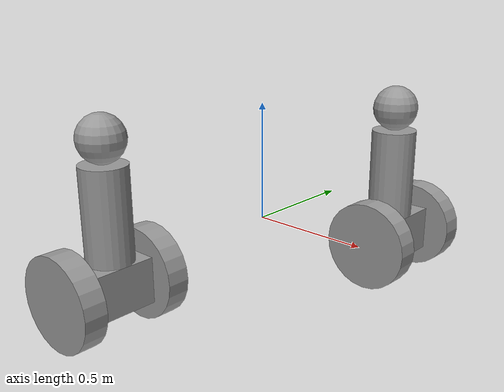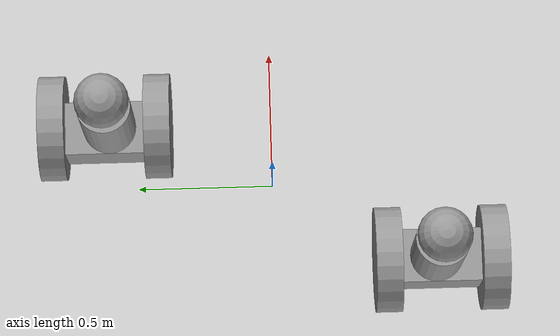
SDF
<?xml version='1.0'?>
<sdf version='1.6'>
  <model name='myrobot'>
    <link name='link_0'>
      <pose frame=''>0.25729 0.630985 -0.18 0 -0 0</pose>
      <inertial>
        <mass>1</mass>
        <inertia>
          <ixx>0.166667</ixx>
          <ixy>0</ixy>
          <ixz>0</ixz>
          <iyy>0.166667</iyy>
          <iyz>0</iyz>
          <izz>0.166667</izz>
        </inertia>
        <pose frame=''>0 0 0 0 -0 0</pose>
      </inertial>
      <gravity>1</gravity>
      <self_collide>0</self_collide>
      <kinematic>0</kinematic>
      <visual name='visual'>
        <pose frame=''>0 0 0 0 -0 0</pose>
        <geometry>
          <box>
            <size>0.2 0.3 0.2</size>
          </box>
        </geometry>
        <material>
          <lighting>1</lighting>
          <script>
            <uri>file://media/materials/scripts/gazebo.material</uri>
            <name>Gazebo/Grey</name>
          </script>
          <shader type='pixel'>
            <normal_map>__default__</normal_map>
          </shader>
          <ambient>0.3 0.3 0.3 1</ambient>
          <diffuse>0.7 0.7 0.7 1</diffuse>
          <specular>0.01 0.01 0.01 1</specular>
          <emissive>0 0 0 1</emissive>
        </material>
        <transparency>0</transparency>
        <cast_shadows>1</cast_shadows>
      </visual>
      <collision name='collision'>
        <laser_retro>0</laser_retro>
        <max_contacts>10</max_contacts>
        <pose frame=''>0 0 0 0 -0 0</pose>
        <geometry>
          <box>
            <size>0.2 0.3 0.2</size>
          </box>
        </geometry>
        <surface>
          <friction>
            <ode>
              <mu>1</mu>
              <mu2>1</mu2>
              <fdir1>0 0 0</fdir1>
              <slip1>0</slip1>
              <slip2>0</slip2>
            </ode>
            <torsional>
              <coefficient>1</coefficient>
              <patch_radius>0</patch_radius>
              <surface_radius>0</surface_radius>
              <use_patch_radius>1</use_patch_radius>
              <ode>
                <slip>0</slip>
              </ode>
            </torsional>
          </friction>
          <bounce>
            <restitution_coefficient>0</restitution_coefficient>
            <threshold>1e+06</threshold>
          </bounce>
          <contact>
            <collide_without_contact>0</collide_without_contact>
            <collide_without_contact_bitmask>1</collide_without_contact_bitmask>
            <collide_bitmask>1</collide_bitmask>
            <ode>
              <soft_cfm>0</soft_cfm>
              <soft_erp>0.2</soft_erp>
              <kp>1e+13</kp>
              <kd>1</kd>
              <max_vel>0.01</max_vel>
              <min_depth>0</min_depth>
            </ode>
            <bullet>
              <split_impulse>1</split_impulse>
              <split_impulse_penetration_threshold>-0.01</split_impulse_penetration_threshold>
              <soft_cfm>0</soft_cfm>
              <soft_erp>0.2</soft_erp>
              <kp>1e+13</kp>
              <kd>1</kd>
            </bullet>
          </contact>
        </surface>
      </collision>
    </link>
    <link name='link_0_clone'>
      <pose frame=''>-0.265295 -0.631003 -0.18 0 -0 0</pose>
      <inertial>
        <mass>1</mass>
        <inertia>
          <ixx>0.166667</ixx>
          <ixy>0</ixy>
          <ixz>0</ixz>
          <iyy>0.166667</iyy>
          <iyz>0</iyz>
          <izz>0.166667</izz>
        </inertia>
        <pose frame=''>0 0 0 0 -0 0</pose>
      </inertial>
      <self_collide>0</self_collide>
      <kinematic>0</kinematic>
      <visual name='visual'>
        <pose frame=''>0 0 0 0 -0 0</pose>
        <geometry>
          <box>
            <size>0.2 0.3 0.2</size>
          </box>
        </geometry>
        <material>
          <lighting>1</lighting>
          <script>
            <uri>file://media/materials/scripts/gazebo.material</uri>
            <name>Gazebo/Grey</name>
          </script>
          <shader type='pixel'>
            <normal_map>__default__</normal_map>
          </shader>
          <ambient>0.3 0.3 0.3 1</ambient>
          <diffuse>0.7 0.7 0.7 1</diffuse>
          <specular>0.01 0.01 0.01 1</specular>
          <emissive>0 0 0 1</emissive>
        </material>
        <transparency>0</transparency>
        <cast_shadows>1</cast_shadows>
      </visual>
      <collision name='collision'>
        <laser_retro>0</laser_retro>
        <max_contacts>10</max_contacts>
        <pose frame=''>0 0 0 0 -0 0</pose>
        <geometry>
          <box>
            <size>0.2 0.3 0.2</size>
          </box>
        </geometry>
        <surface>
          <friction>
            <ode>
              <mu>1</mu>
              <mu2>1</mu2>
              <fdir1>0 0 0</fdir1>
              <slip1>0</slip1>
              <slip2>0</slip2>
            </ode>
            <torsional>
              <coefficient>1</coefficient>
              <patch_radius>0</patch_radius>
              <surface_radius>0</surface_radius>
              <use_patch_radius>1</use_patch_radius>
              <ode>
                <slip>0</slip>
              </ode>
            </torsional>
          </friction>
          <bounce>
            <restitution_coefficient>0</restitution_coefficient>
            <threshold>1e+06</threshold>
          </bounce>
          <contact>
            <collide_without_contact>0</collide_without_contact>
            <collide_without_contact_bitmask>1</collide_without_contact_bitmask>
            <collide_bitmask>1</collide_bitmask>
            <ode>
              <soft_cfm>0</soft_cfm>
              <soft_erp>0.2</soft_erp>
              <kp>1e+13</kp>
              <kd>1</kd>
              <max_vel>0.01</max_vel>
              <min_depth>0</min_depth>
            </ode>
            <bullet>
              <split_impulse>1</split_impulse>
              <split_impulse_penetration_threshold>-0.01</split_impulse_penetration_threshold>
              <soft_cfm>0</soft_cfm>
              <soft_erp>0.2</soft_erp>
              <kp>1e+13</kp>
              <kd>1</kd>
            </bullet>
          </contact>
        </surface>
      </collision>
    </link>
    <link name='link_1'>
      <pose frame=''>0.27729 0.430966 -0.18 1.5707 -0 0</pose>
      <inertial>
        <mass>1</mass>
        <inertia>
          <ixx>0.145833</ixx>
          <ixy>0</ixy>
          <ixz>0</ixz>
          <iyy>0.145833</iyy>
          <iyz>0</iyz>
          <izz>0.125</izz>
        </inertia>
        <pose frame=''>0 0 0 0 -0 0</pose>
      </inertial>
      <gravity>1</gravity>
      <self_collide>0</self_collide>
      <kinematic>0</kinematic>
      <visual name='visual'>
        <pose frame=''>0 0 0 0 -0 0</pose>
        <geometry>
          <cylinder>
            <radius>0.2</radius>
            <length>0.1</length>
          </cylinder>
        </geometry>
        <material>
          <lighting>1</lighting>
          <script>
            <uri>file://media/materials/scripts/gazebo.material</uri>
            <name>Gazebo/Grey</name>
          </script>
          <shader type='pixel'>
            <normal_map>__default__</normal_map>
          </shader>
          <ambient>0.3 0.3 0.3 1</ambient>
          <diffuse>0.7 0.7 0.7 1</diffuse>
          <specular>0.01 0.01 0.01 1</specular>
          <emissive>0 0 0 1</emissive>
        </material>
        <transparency>0</transparency>
        <cast_shadows>1</cast_shadows>
      </visual>
      <collision name='collision'>
        <laser_retro>0</laser_retro>
        <max_contacts>10</max_contacts>
        <pose frame=''>0 0 0 0 -0 0</pose>
        <geometry>
          <cylinder>
            <radius>0.2</radius>
            <length>0.1</length>
          </cylinder>
        </geometry>
        <surface>
          <friction>
            <ode>
              <mu>1</mu>
              <mu2>1</mu2>
              <fdir1>0 0 0</fdir1>
              <slip1>0</slip1>
              <slip2>0</slip2>
            </ode>
            <torsional>
              <coefficient>1</coefficient>
              <patch_radius>0</patch_radius>
              <surface_radius>0</surface_radius>
              <use_patch_radius>1</use_patch_radius>
              <ode>
                <slip>0</slip>
              </ode>
            </torsional>
          </friction>
          <bounce>
            <restitution_coefficient>0</restitution_coefficient>
            <threshold>1e+06</threshold>
          </bounce>
          <contact>
            <collide_without_contact>0</collide_without_contact>
            <collide_without_contact_bitmask>1</collide_without_contact_bitmask>
            <collide_bitmask>1</collide_bitmask>
            <ode>
              <soft_cfm>0</soft_cfm>
              <soft_erp>0.2</soft_erp>
              <kp>1e+13</kp>
              <kd>1</kd>
              <max_vel>0.01</max_vel>
              <min_depth>0</min_depth>
            </ode>
            <bullet>
              <split_impulse>1</split_impulse>
              <split_impulse_penetration_threshold>-0.01</split_impulse_penetration_threshold>
              <soft_cfm>0</soft_cfm>
              <soft_erp>0.2</soft_erp>
              <kp>1e+13</kp>
              <kd>1</kd>
            </bullet>
          </contact>
        </surface>
      </collision>
    </link>
    <link name='link_1_clone'>
      <pose frame=''>0.27729 0.831004 -0.18 1.5707 -0 0</pose>
      <inertial>
        <mass>1</mass>
        <inertia>
          <ixx>0.145833</ixx>
          <ixy>0</ixy>
          <ixz>0</ixz>
          <iyy>0.145833</iyy>
          <iyz>0</iyz>
          <izz>0.125</izz>
        </inertia>
        <pose frame=''>0 0 0 0 -0 0</pose>
      </inertial>
      <self_collide>0</self_collide>
      <kinematic>0</kinematic>
      <visual name='visual'>
        <pose frame=''>0 0 0 0 -0 0</pose>
        <geometry>
          <cylinder>
            <radius>0.2</radius>
            <length>0.1</length>
          </cylinder>
        </geometry>
        <material>
          <lighting>1</lighting>
          <script>
            <uri>file://media/materials/scripts/gazebo.material</uri>
            <name>Gazebo/Grey</name>
          </script>
          <shader type='pixel'>
            <normal_map>__default__</normal_map>
          </shader>
          <ambient>0.3 0.3 0.3 1</ambient>
          <diffuse>0.7 0.7 0.7 1</diffuse>
          <specular>0.01 0.01 0.01 1</specular>
          <emissive>0 0 0 1</emissive>
        </material>
        <transparency>0</transparency>
        <cast_shadows>1</cast_shadows>
      </visual>
      <collision name='collision'>
        <laser_retro>0</laser_retro>
        <max_contacts>10</max_contacts>
        <pose frame=''>0 0 0 0 -0 0</pose>
        <geometry>
          <cylinder>
            <radius>0.2</radius>
            <length>0.1</length>
          </cylinder>
        </geometry>
        <surface>
          <friction>
            <ode>
              <mu>1</mu>
              <mu2>1</mu2>
              <fdir1>0 0 0</fdir1>
              <slip1>0</slip1>
              <slip2>0</slip2>
            </ode>
            <torsional>
              <coefficient>1</coefficient>
              <patch_radius>0</patch_radius>
              <surface_radius>0</surface_radius>
              <use_patch_radius>1</use_patch_radius>
              <ode>
                <slip>0</slip>
              </ode>
            </torsional>
          </friction>
          <bounce>
            <restitution_coefficient>0</restitution_coefficient>
            <threshold>1e+06</threshold>
          </bounce>
          <contact>
            <collide_without_contact>0</collide_without_contact>
            <collide_without_contact_bitmask>1</collide_without_contact_bitmask>
            <collide_bitmask>1</collide_bitmask>
            <ode>
              <soft_cfm>0</soft_cfm>
              <soft_erp>0.2</soft_erp>
              <kp>1e+13</kp>
              <kd>1</kd>
              <max_vel>0.01</max_vel>
              <min_depth>0</min_depth>
            </ode>
            <bullet>
              <split_impulse>1</split_impulse>
              <split_impulse_penetration_threshold>-0.01</split_impulse_penetration_threshold>
              <soft_cfm>0</soft_cfm>
              <soft_erp>0.2</soft_erp>
              <kp>1e+13</kp>
              <kd>1</kd>
            </bullet>
          </contact>
        </surface>
      </collision>
    </link>
    <link name='link_1_clone_0'>
      <pose frame=''>-0.265295 -0.831022 -0.18 1.5707 -0 0</pose>
      <inertial>
        <mass>1</mass>
        <inertia>
          <ixx>0.145833</ixx>
          <ixy>0</ixy>
          <ixz>0</ixz>
          <iyy>0.145833</iyy>
          <iyz>0</iyz>
          <izz>0.125</izz>
        </inertia>
        <pose frame=''>0 0 0 0 -0 0</pose>
      </inertial>
      <self_collide>0</self_collide>
      <kinematic>0</kinematic>
      <visual name='visual'>
        <pose frame=''>0 0 0 0 -0 0</pose>
        <geometry>
          <cylinder>
            <radius>0.2</radius>
            <length>0.1</length>
          </cylinder>
        </geometry>
        <material>
          <lighting>1</lighting>
          <script>
            <uri>file://media/materials/scripts/gazebo.material</uri>
            <name>Gazebo/Grey</name>
          </script>
          <shader type='pixel'>
            <normal_map>__default__</normal_map>
          </shader>
          <ambient>0.3 0.3 0.3 1</ambient>
          <diffuse>0.7 0.7 0.7 1</diffuse>
          <specular>0.01 0.01 0.01 1</specular>
          <emissive>0 0 0 1</emissive>
        </material>
        <transparency>0</transparency>
        <cast_shadows>1</cast_shadows>
      </visual>
      <collision name='collision'>
        <laser_retro>0</laser_retro>
        <max_contacts>10</max_contacts>
        <pose frame=''>0 0 0 0 -0 0</pose>
        <geometry>
          <cylinder>
            <radius>0.2</radius>
            <length>0.1</length>
          </cylinder>
        </geometry>
        <surface>
          <friction>
            <ode>
              <mu>1</mu>
              <mu2>1</mu2>
              <fdir1>0 0 0</fdir1>
              <slip1>0</slip1>
              <slip2>0</slip2>
            </ode>
            <torsional>
              <coefficient>1</coefficient>
              <patch_radius>0</patch_radius>
              <surface_radius>0</surface_radius>
              <use_patch_radius>1</use_patch_radius>
              <ode>
                <slip>0</slip>
              </ode>
            </torsional>
          </friction>
          <bounce>
            <restitution_coefficient>0</restitution_coefficient>
            <threshold>1e+06</threshold>
          </bounce>
          <contact>
            <collide_without_contact>0</collide_without_contact>
            <collide_without_contact_bitmask>1</collide_without_contact_bitmask>
            <collide_bitmask>1</collide_bitmask>
            <ode>
              <soft_cfm>0</soft_cfm>
              <soft_erp>0.2</soft_erp>
              <kp>1e+13</kp>
              <kd>1</kd>
              <max_vel>0.01</max_vel>
              <min_depth>0</min_depth>
            </ode>
            <bullet>
              <split_impulse>1</split_impulse>
              <split_impulse_penetration_threshold>-0.01</split_impulse_penetration_threshold>
              <soft_cfm>0</soft_cfm>
              <soft_erp>0.2</soft_erp>
              <kp>1e+13</kp>
              <kd>1</kd>
            </bullet>
          </contact>
        </surface>
      </collision>
    </link>
    <link name='link_1_clone_clone'>
      <pose frame=''>-0.265295 -0.430983 -0.18 1.5707 -0 0</pose>
      <inertial>
        <mass>1</mass>
        <inertia>
          <ixx>0.145833</ixx>
          <ixy>0</ixy>
          <ixz>0</ixz>
          <iyy>0.145833</iyy>
          <iyz>0</iyz>
          <izz>0.125</izz>
        </inertia>
        <pose frame=''>0 0 0 0 -0 0</pose>
      </inertial>
      <self_collide>0</self_collide>
      <kinematic>0</kinematic>
      <visual name='visual'>
        <pose frame=''>0 0 0 0 -0 0</pose>
        <geometry>
          <cylinder>
            <radius>0.2</radius>
            <length>0.1</length>
          </cylinder>
        </geometry>
        <material>
          <lighting>1</lighting>
          <script>
            <uri>file://media/materials/scripts/gazebo.material</uri>
            <name>Gazebo/Grey</name>
          </script>
          <shader type='pixel'>
            <normal_map>__default__</normal_map>
          </shader>
          <ambient>0.3 0.3 0.3 1</ambient>
          <diffuse>0.7 0.7 0.7 1</diffuse>
          <specular>0.01 0.01 0.01 1</specular>
          <emissive>0 0 0 1</emissive>
        </material>
        <transparency>0</transparency>
        <cast_shadows>1</cast_shadows>
      </visual>
      <collision name='collision'>
        <laser_retro>0</laser_retro>
        <max_contacts>10</max_contacts>
        <pose frame=''>0 0 0 0 -0 0</pose>
        <geometry>
          <cylinder>
            <radius>0.2</radius>
            <length>0.1</length>
          </cylinder>
        </geometry>
        <surface>
          <friction>
            <ode>
              <mu>1</mu>
              <mu2>1</mu2>
              <fdir1>0 0 0</fdir1>
              <slip1>0</slip1>
              <slip2>0</slip2>
            </ode>
            <torsional>
              <coefficient>1</coefficient>
              <patch_radius>0</patch_radius>
              <surface_radius>0</surface_radius>
              <use_patch_radius>1</use_patch_radius>
              <ode>
                <slip>0</slip>
              </ode>
            </torsional>
          </friction>
          <bounce>
            <restitution_coefficient>0</restitution_coefficient>
            <threshold>1e+06</threshold>
          </bounce>
          <contact>
            <collide_without_contact>0</collide_without_contact>
            <collide_without_contact_bitmask>1</collide_without_contact_bitmask>
            <collide_bitmask>1</collide_bitmask>
            <ode>
              <soft_cfm>0</soft_cfm>
              <soft_erp>0.2</soft_erp>
              <kp>1e+13</kp>
              <kd>1</kd>
              <max_vel>0.01</max_vel>
              <min_depth>0</min_depth>
            </ode>
            <bullet>
              <split_impulse>1</split_impulse>
              <split_impulse_penetration_threshold>-0.01</split_impulse_penetration_threshold>
              <soft_cfm>0</soft_cfm>
              <soft_erp>0.2</soft_erp>
              <kp>1e+13</kp>
              <kd>1</kd>
            </bullet>
          </contact>
        </surface>
      </collision>
    </link>
    <link name='link_2'>
      <pose frame=''>0.25729 0.610985 0.12 0 -0 0</pose>
      <inertial>
        <mass>1</mass>
        <inertia>
          <ixx>0.145833</ixx>
          <ixy>0</ixy>
          <ixz>0</ixz>
          <iyy>0.145833</iyy>
          <iyz>0</iyz>
          <izz>0.125</izz>
        </inertia>
        <pose frame=''>0 0 0 0 -0 0</pose>
      </inertial>
      <gravity>1</gravity>
      <self_collide>0</self_collide>
      <kinematic>0</kinematic>
      <visual name='visual'>
        <pose frame=''>0 0 0 0 -0 0</pose>
        <geometry>
          <cylinder>
            <radius>0.1</radius>
            <length>0.4</length>
          </cylinder>
        </geometry>
        <material>
          <lighting>1</lighting>
          <script>
            <uri>file://media/materials/scripts/gazebo.material</uri>
            <name>Gazebo/Grey</name>
          </script>
          <shader type='pixel'>
            <normal_map>__default__</normal_map>
          </shader>
          <ambient>0.3 0.3 0.3 1</ambient>
          <diffuse>0.7 0.7 0.7 1</diffuse>
          <specular>0.01 0.01 0.01 1</specular>
          <emissive>0 0 0 1</emissive>
        </material>
        <transparency>0</transparency>
        <cast_shadows>1</cast_shadows>
      </visual>
      <collision name='collision'>
        <laser_retro>0</laser_retro>
        <max_contacts>10</max_contacts>
        <pose frame=''>0 0 0 0 -0 0</pose>
        <geometry>
          <cylinder>
            <radius>0.1</radius>
            <length>0.4</length>
          </cylinder>
        </geometry>
        <surface>
          <friction>
            <ode>
              <mu>1</mu>
              <mu2>1</mu2>
              <fdir1>0 0 0</fdir1>
              <slip1>0</slip1>
              <slip2>0</slip2>
            </ode>
            <torsional>
              <coefficient>1</coefficient>
              <patch_radius>0</patch_radius>
              <surface_radius>0</surface_radius>
              <use_patch_radius>1</use_patch_radius>
              <ode>
                <slip>0</slip>
              </ode>
            </torsional>
          </friction>
          <bounce>
            <restitution_coefficient>0</restitution_coefficient>
            <threshold>1e+06</threshold>
          </bounce>
          <contact>
            <collide_without_contact>0</collide_without_contact>
            <collide_without_contact_bitmask>1</collide_without_contact_bitmask>
            <collide_bitmask>1</collide_bitmask>
            <ode>
              <soft_cfm>0</soft_cfm>
              <soft_erp>0.2</soft_erp>
              <kp>1e+13</kp>
              <kd>1</kd>
              <max_vel>0.01</max_vel>
              <min_depth>0</min_depth>
            </ode>
            <bullet>
              <split_impulse>1</split_impulse>
              <split_impulse_penetration_threshold>-0.01</split_impulse_penetration_threshold>
              <soft_cfm>0</soft_cfm>
              <soft_erp>0.2</soft_erp>
              <kp>1e+13</kp>
              <kd>1</kd>
            </bullet>
          </contact>
        </surface>
      </collision>
    </link>
    <link name='link_2_clone'>
      <pose frame=''>-0.265295 -0.610957 0.12 0 -0 0</pose>
      <inertial>
        <mass>1</mass>
        <inertia>
          <ixx>0.145833</ixx>
          <ixy>0</ixy>
          <ixz>0</ixz>
          <iyy>0.145833</iyy>
          <iyz>0</iyz>
          <izz>0.125</izz>
        </inertia>
        <pose frame=''>0 0 0 0 -0 0</pose>
      </inertial>
      <self_collide>0</self_collide>
      <kinematic>0</kinematic>
      <visual name='visual'>
        <pose frame=''>0 0 0 0 -0 0</pose>
        <geometry>
          <cylinder>
            <radius>0.1</radius>
            <length>0.4</length>
          </cylinder>
        </geometry>
        <material>
          <lighting>1</lighting>
          <script>
            <uri>file://media/materials/scripts/gazebo.material</uri>
            <name>Gazebo/Grey</name>
          </script>
          <shader type='pixel'>
            <normal_map>__default__</normal_map>
          </shader>
          <ambient>0.3 0.3 0.3 1</ambient>
          <diffuse>0.7 0.7 0.7 1</diffuse>
          <specular>0.01 0.01 0.01 1</specular>
          <emissive>0 0 0 1</emissive>
        </material>
        <transparency>0</transparency>
        <cast_shadows>1</cast_shadows>
      </visual>
      <collision name='collision'>
        <laser_retro>0</laser_retro>
        <max_contacts>10</max_contacts>
        <pose frame=''>0 0 0 0 -0 0</pose>
        <geometry>
          <cylinder>
            <radius>0.1</radius>
            <length>0.4</length>
          </cylinder>
        </geometry>
        <surface>
          <friction>
            <ode>
              <mu>1</mu>
              <mu2>1</mu2>
              <fdir1>0 0 0</fdir1>
              <slip1>0</slip1>
              <slip2>0</slip2>
            </ode>
            <torsional>
              <coefficient>1</coefficient>
              <patch_radius>0</patch_radius>
              <surface_radius>0</surface_radius>
              <use_patch_radius>1</use_patch_radius>
              <ode>
                <slip>0</slip>
              </ode>
            </torsional>
          </friction>
          <bounce>
            <restitution_coefficient>0</restitution_coefficient>
            <threshold>1e+06</threshold>
          </bounce>
          <contact>
            <collide_without_contact>0</collide_without_contact>
            <collide_without_contact_bitmask>1</collide_without_contact_bitmask>
            <collide_bitmask>1</collide_bitmask>
            <ode>
              <soft_cfm>0</soft_cfm>
              <soft_erp>0.2</soft_erp>
              <kp>1e+13</kp>
              <kd>1</kd>
              <max_vel>0.01</max_vel>
              <min_depth>0</min_depth>
            </ode>
            <bullet>
              <split_impulse>1</split_impulse>
              <split_impulse_penetration_threshold>-0.01</split_impulse_penetration_threshold>
              <soft_cfm>0</soft_cfm>
              <soft_erp>0.2</soft_erp>
              <kp>1e+13</kp>
              <kd>1</kd>
            </bullet>
          </contact>
        </surface>
      </collision>
    </link>
    <link name='link_3'>
      <pose frame=''>0.25729 0.610985 0.42 0 -0 0</pose>
      <inertial>
        <mass>1</mass>
        <inertia>
          <ixx>0.1</ixx>
          <ixy>0</ixy>
          <ixz>0</ixz>
          <iyy>0.1</iyy>
          <iyz>0</iyz>
          <izz>0.1</izz>
        </inertia>
        <pose frame=''>0 0 0 0 -0 0</pose>
      </inertial>
      <gravity>1</gravity>
      <self_collide>0</self_collide>
      <kinematic>0</kinematic>
      <visual name='visual'>
        <pose frame=''>0 0 0 0 -0 0</pose>
        <geometry>
          <sphere>
            <radius>0.1</radius>
          </sphere>
        </geometry>
        <material>
          <lighting>1</lighting>
          <script>
            <uri>file://media/materials/scripts/gazebo.material</uri>
            <name>Gazebo/Grey</name>
          </script>
          <shader type='pixel'>
            <normal_map>__default__</normal_map>
          </shader>
          <ambient>0.3 0.3 0.3 1</ambient>
          <diffuse>0.7 0.7 0.7 1</diffuse>
          <specular>0.01 0.01 0.01 1</specular>
          <emissive>0 0 0 1</emissive>
        </material>
        <transparency>0</transparency>
        <cast_shadows>1</cast_shadows>
      </visual>
      <collision name='collision'>
        <laser_retro>0</laser_retro>
        <max_contacts>10</max_contacts>
        <pose frame=''>0 0 0 0 -0 0</pose>
        <geometry>
          <sphere>
            <radius>0.1</radius>
          </sphere>
        </geometry>
        <surface>
          <friction>
            <ode>
              <mu>1</mu>
              <mu2>1</mu2>
              <fdir1>0 0 0</fdir1>
              <slip1>0</slip1>
              <slip2>0</slip2>
            </ode>
            <torsional>
              <coefficient>1</coefficient>
              <patch_radius>0</patch_radius>
              <surface_radius>0</surface_radius>
              <use_patch_radius>1</use_patch_radius>
              <ode>
                <slip>0</slip>
              </ode>
            </torsional>
          </friction>
          <bounce>
            <restitution_coefficient>0</restitution_coefficient>
            <threshold>1e+06</threshold>
          </bounce>
          <contact>
            <collide_without_contact>0</collide_without_contact>
            <collide_without_contact_bitmask>1</collide_without_contact_bitmask>
            <collide_bitmask>1</collide_bitmask>
            <ode>
              <soft_cfm>0</soft_cfm>
              <soft_erp>0.2</soft_erp>
              <kp>1e+13</kp>
              <kd>1</kd>
              <max_vel>0.01</max_vel>
              <min_depth>0</min_depth>
            </ode>
            <bullet>
              <split_impulse>1</split_impulse>
              <split_impulse_penetration_threshold>-0.01</split_impulse_penetration_threshold>
              <soft_cfm>0</soft_cfm>
              <soft_erp>0.2</soft_erp>
              <kp>1e+13</kp>
              <kd>1</kd>
            </bullet>
          </contact>
        </surface>
      </collision>
    </link>
    <link name='link_3_clone'>
      <pose frame=''>-0.265295 -0.610957 0.42 0 -0 0</pose>
      <inertial>
        <mass>1</mass>
        <inertia>
          <ixx>0.1</ixx>
          <ixy>0</ixy>
          <ixz>0</ixz>
          <iyy>0.1</iyy>
          <iyz>0</iyz>
          <izz>0.1</izz>
        </inertia>
        <pose frame=''>0 0 0 0 -0 0</pose>
      </inertial>
      <self_collide>0</self_collide>
      <kinematic>0</kinematic>
      <visual name='visual'>
        <pose frame=''>0 0 0 0 -0 0</pose>
        <geometry>
          <sphere>
            <radius>0.1</radius>
          </sphere>
        </geometry>
        <material>
          <lighting>1</lighting>
          <script>
            <uri>file://media/materials/scripts/gazebo.material</uri>
            <name>Gazebo/Grey</name>
          </script>
          <shader type='pixel'>
            <normal_map>__default__</normal_map>
          </shader>
          <ambient>0.3 0.3 0.3 1</ambient>
          <diffuse>0.7 0.7 0.7 1</diffuse>
          <specular>0.01 0.01 0.01 1</specular>
          <emissive>0 0 0 1</emissive>
        </material>
        <transparency>0</transparency>
        <cast_shadows>1</cast_shadows>
      </visual>
      <collision name='collision'>
        <laser_retro>0</laser_retro>
        <max_contacts>10</max_contacts>
        <pose frame=''>0 0 0 0 -0 0</pose>
        <geometry>
          <sphere>
            <radius>0.1</radius>
          </sphere>
        </geometry>
        <surface>
          <friction>
            <ode>
              <mu>1</mu>
              <mu2>1</mu2>
              <fdir1>0 0 0</fdir1>
              <slip1>0</slip1>
              <slip2>0</slip2>
            </ode>
            <torsional>
              <coefficient>1</coefficient>
              <patch_radius>0</patch_radius>
              <surface_radius>0</surface_radius>
              <use_patch_radius>1</use_patch_radius>
              <ode>
                <slip>0</slip>
              </ode>
            </torsional>
          </friction>
          <bounce>
            <restitution_coefficient>0</restitution_coefficient>
            <threshold>1e+06</threshold>
          </bounce>
          <contact>
            <collide_without_contact>0</collide_without_contact>
            <collide_without_contact_bitmask>1</collide_without_contact_bitmask>
            <collide_bitmask>1</collide_bitmask>
            <ode>
              <soft_cfm>0</soft_cfm>
              <soft_erp>0.2</soft_erp>
              <kp>1e+13</kp>
              <kd>1</kd>
              <max_vel>0.01</max_vel>
              <min_depth>0</min_depth>
            </ode>
            <bullet>
              <split_impulse>1</split_impulse>
              <split_impulse_penetration_threshold>-0.01</split_impulse_penetration_threshold>
              <soft_cfm>0</soft_cfm>
              <soft_erp>0.2</soft_erp>
              <kp>1e+13</kp>
              <kd>1</kd>
            </bullet>
          </contact>
        </surface>
      </collision>
    </link>
    <joint name='link_0_JOINT_0' type='revolute'>
      <parent>link_0</parent>
      <child>link_1</child>
      <pose frame=''>0 0 0 0 -0 0</pose>
      <axis>
        <xyz>0 0 1</xyz>
        <use_parent_model_frame>0</use_parent_model_frame>
        <limit>
          <lower>-1.79769e+308</lower>
          <upper>1.79769e+308</upper>
          <effort>-1</effort>
          <velocity>-1</velocity>
        </limit>
        <dynamics>
          <spring_reference>0</spring_reference>
          <spring_stiffness>0</spring_stiffness>
          <damping>0</damping>
        </dynamics>
      </axis>
      <physics>
        <ode>
          <limit>
            <cfm>0</cfm>
            <erp>0.2</erp>
          </limit>
          <suspension>
            <cfm>0</cfm>
            <erp>0.2</erp>
          </suspension>
        </ode>
      </physics>
    </joint>
    <joint name='link_0_JOINT_1' type='revolute'>
      <parent>link_0</parent>
      <child>link_1_clone</child>
      <pose frame=''>0 0 0 0 -0 0</pose>
      <axis>
        <xyz>0 0 1</xyz>
        <use_parent_model_frame>0</use_parent_model_frame>
        <limit>
          <lower>-1.79769e+308</lower>
          <upper>1.79769e+308</upper>
          <effort>-1</effort>
          <velocity>-1</velocity>
        </limit>
        <dynamics>
          <spring_reference>0</spring_reference>
          <spring_stiffness>0</spring_stiffness>
          <damping>0</damping>
        </dynamics>
      </axis>
      <physics>
        <ode>
          <limit>
            <cfm>0</cfm>
            <erp>0.2</erp>
          </limit>
          <suspension>
            <cfm>0</cfm>
            <erp>0.2</erp>
          </suspension>
        </ode>
      </physics>
    </joint>
    <joint name='link_0_JOINT_2' type='revolute'>
      <parent>link_0</parent>
      <child>link_2</child>
      <pose frame=''>0 0 0 0 -0 0</pose>
      <axis>
        <xyz>0 0 1</xyz>
        <use_parent_model_frame>0</use_parent_model_frame>
        <limit>
          <lower>-1.79769e+308</lower>
          <upper>1.79769e+308</upper>
          <effort>-1</effort>
          <velocity>-1</velocity>
        </limit>
        <dynamics>
          <spring_reference>0</spring_reference>
          <spring_stiffness>0</spring_stiffness>
          <damping>0</damping>
        </dynamics>
      </axis>
      <physics>
        <ode>
          <limit>
            <cfm>0</cfm>
            <erp>0.2</erp>
          </limit>
          <suspension>
            <cfm>0</cfm>
            <erp>0.2</erp>
          </suspension>
        </ode>
      </physics>
    </joint>
    <joint name='link_0_clone_JOINT_10' type='revolute'>
      <parent>link_0_clone</parent>
      <child>link_2_clone</child>
      <pose frame=''>0 0 0 0 -0 0</pose>
      <axis>
        <xyz>0 0 1</xyz>
        <use_parent_model_frame>0</use_parent_model_frame>
        <limit>
          <lower>-1.79769e+308</lower>
          <upper>1.79769e+308</upper>
          <effort>-1</effort>
          <velocity>-1</velocity>
        </limit>
        <dynamics>
          <spring_reference>0</spring_reference>
          <spring_stiffness>0</spring_stiffness>
          <damping>0</damping>
        </dynamics>
      </axis>
      <physics>
        <ode>
          <limit>
            <cfm>0</cfm>
            <erp>0.2</erp>
          </limit>
          <suspension>
            <cfm>0</cfm>
            <erp>0.2</erp>
          </suspension>
        </ode>
      </physics>
    </joint>
    <joint name='link_0_clone_JOINT_6' type='revolute'>
      <parent>link_0_clone</parent>
      <child>link_1_clone_0</child>
      <pose frame=''>0 0 0 0 -0 0</pose>
      <axis>
        <xyz>0 0 1</xyz>
        <use_parent_model_frame>0</use_parent_model_frame>
        <limit>
          <lower>-1.79769e+308</lower>
          <upper>1.79769e+308</upper>
          <effort>-1</effort>
          <velocity>-1</velocity>
        </limit>
        <dynamics>
          <spring_reference>0</spring_reference>
          <spring_stiffness>0</spring_stiffness>
          <damping>0</damping>
        </dynamics>
      </axis>
      <physics>
        <ode>
          <limit>
            <cfm>0</cfm>
            <erp>0.2</erp>
          </limit>
          <suspension>
            <cfm>0</cfm>
            <erp>0.2</erp>
          </suspension>
        </ode>
      </physics>
    </joint>
    <joint name='link_0_clone_JOINT_8' type='revolute'>
      <parent>link_0_clone</parent>
      <child>link_1_clone_clone</child>
      <pose frame=''>0 0 0 0 -0 0</pose>
      <axis>
        <xyz>0 0 1</xyz>
        <use_parent_model_frame>0</use_parent_model_frame>
        <limit>
          <lower>-1.79769e+308</lower>
          <upper>1.79769e+308</upper>
          <effort>-1</effort>
          <velocity>-1</velocity>
        </limit>
        <dynamics>
          <spring_reference>0</spring_reference>
          <spring_stiffness>0</spring_stiffness>
          <damping>0</damping>
        </dynamics>
      </axis>
      <physics>
        <ode>
          <limit>
            <cfm>0</cfm>
            <erp>0.2</erp>
          </limit>
          <suspension>
            <cfm>0</cfm>
            <erp>0.2</erp>
          </suspension>
        </ode>
      </physics>
    </joint>
    <joint name='link_2_JOINT_3' type='fixed'>
      <parent>link_2</parent>
      <child>link_3</child>
      <pose frame=''>0 0 0 0 -0 0</pose>
      <physics>
        <ode>
          <limit>
            <cfm>0</cfm>
            <erp>0.2</erp>
          </limit>
          <suspension>
            <cfm>0</cfm>
            <erp>0.2</erp>
          </suspension>
        </ode>
      </physics>
    </joint>
    <joint name='link_2_clone_JOINT_11' type='fixed'>
      <parent>link_2_clone</parent>
      <child>link_3_clone</child>
      <pose frame=''>0 0 0 0 -0 0</pose>
      <physics>
        <ode>
          <limit>
            <cfm>0</cfm>
            <erp>0.2</erp>
          </limit>
          <suspension>
            <cfm>0</cfm>
            <erp>0.2</erp>
          </suspension>
        </ode>
      </physics>
    </joint>
    <static>0</static>
    <allow_auto_disable>1</allow_auto_disable>
  </model>
</sdf>
